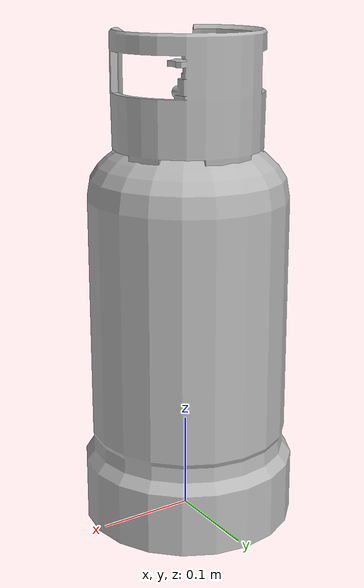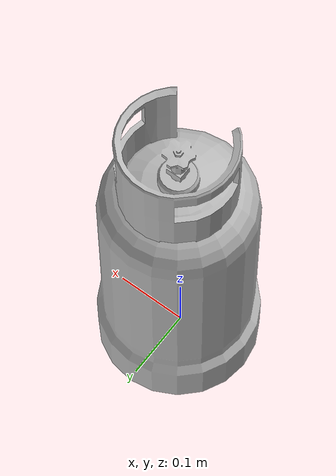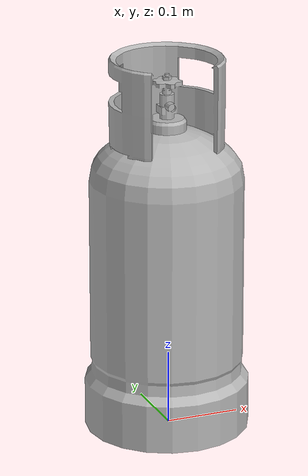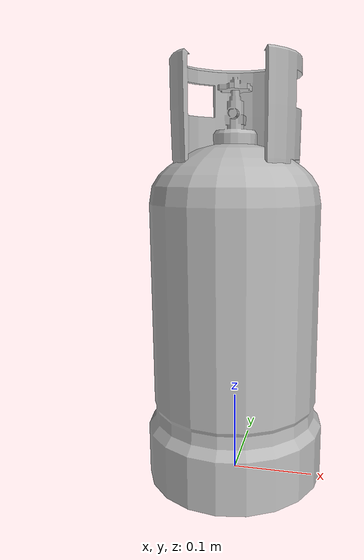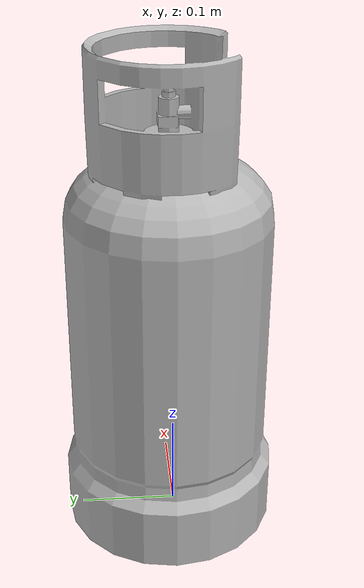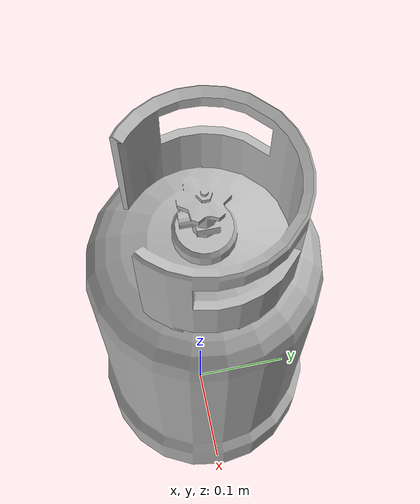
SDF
<?xml version="1.0" ?>
<sdf version='1.4'>
  <model name="gas_bottle">
      <static>1</static>
      <link name='link'>
        <visual name='visual'>
          <geometry>
            <mesh>
              <uri>model://gas_bottle/meshes/gas_bottle.dae</uri>
              <scale>1 1 1</scale>
            </mesh>
          </geometry>
        </visual>
        <collision name='collision'>
          <laser_retro>0</laser_retro>
          <max_contacts>10</max_contacts>
          <pose frame=''>0 0 0.25 0 -0 0</pose>
          <geometry>
            <cylinder>
              <length>0.4</length>
              <radius>0.10</radius>
            </cylinder>
          </geometry>
        </collision>
      </link>
  </model>
</sdf>
